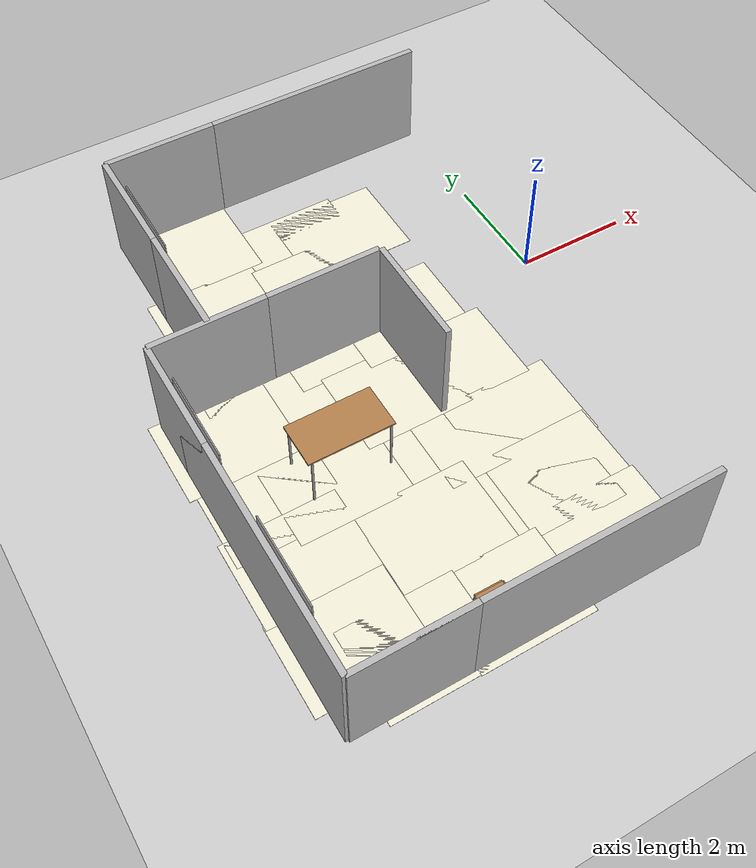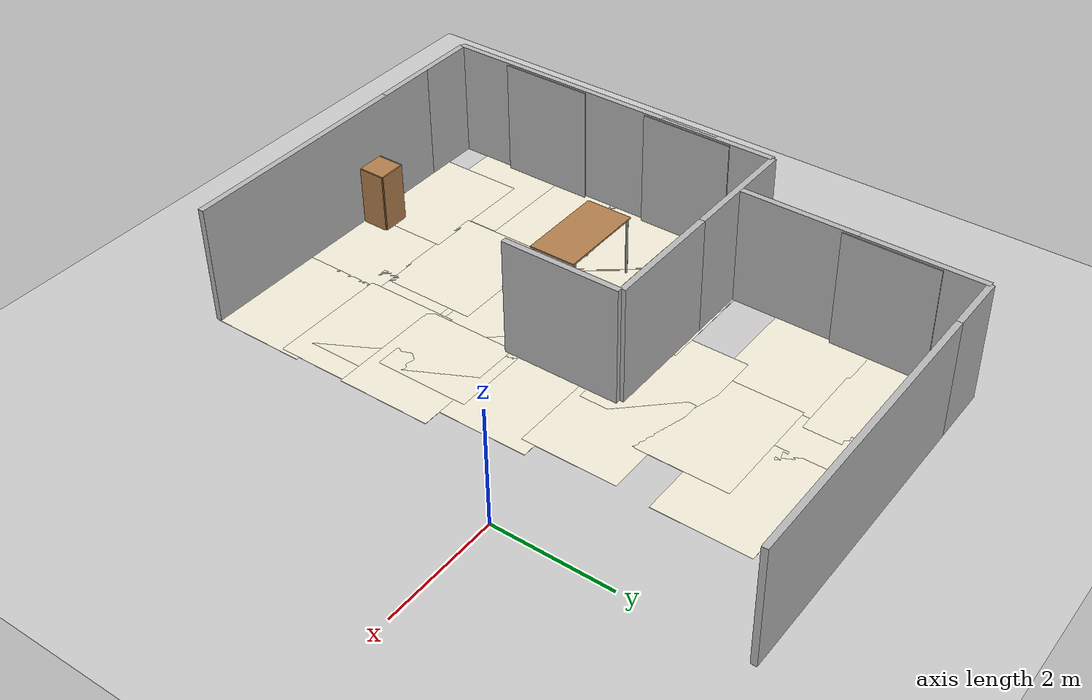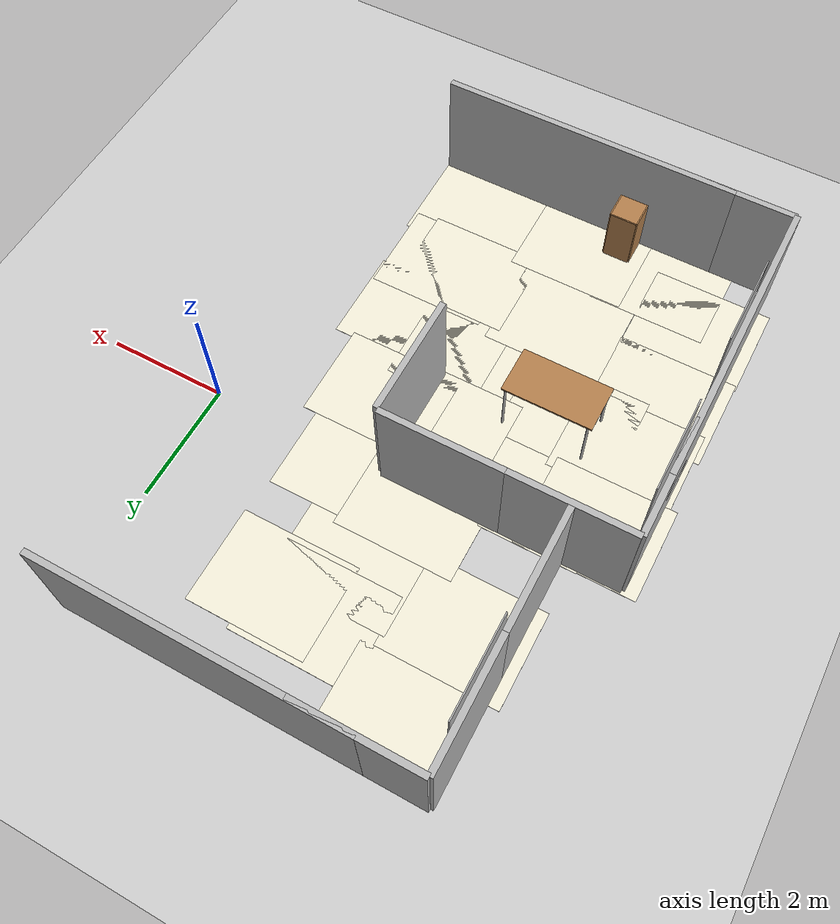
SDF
<sdf version="1.7">
 <world name="default">
  <model name="ground_plane">
   <static>1</static>
   <link name="link">
    <collision name="collision">
     <geometry><plane><normal>0 0 1</normal><size>100 100</size></plane></geometry>
     <surface>
      <contact><collide_bitmask>65535</collide_bitmask></contact>
      <friction><ode><mu>100</mu><mu2>50</mu2></ode></friction>
     </surface>
    </collision>
    <visual name="visual">
     <cast_shadows>0</cast_shadows>
     <geometry><plane><normal>0 0 1</normal><size>1 1</size></plane></geometry>
     <material>
      <script><uri>file://media/materials/scripts/gazebo.material</uri><name>Gazebo/Grey</name></script>
     </material>
    </visual>
   </link>
  </model>
  <model name="cabinet">
   <static>1</static>
   <link name="cabinet_bottom_plate">
    <inertial>
     <pose>0 0 -1 0 -0 0</pose>
     <inertia><ixx>2.05</ixx><ixy>0</ixy><ixz>0</ixz><iyy>2.05</iyy><iyz>0</iyz><izz>2.05</izz></inertia>
     <mass>25</mass>
    </inertial>
    <collision name="cabinet_bottom_plate_geom">
     <pose>0 0 0.01 0 -0 0</pose>
     <geometry><box><size>0.45 0.45 0.02</size></box></geometry>
    </collision>
    <visual name="cabinet_bottom_plate_geom_visual">
     <pose>0 0 0.01 0 -0 0</pose>
     <geometry><box><size>0.45 0.45 0.02</size></box></geometry>
     <material>
      <script><uri>file://media/materials/scripts/gazebo.material</uri><name>Gazebo/Wood</name></script>
     </material>
    </visual>
    <collision name="cabinet_bottom_plate_geom_cabinet_back_plate">
     <pose>0.235 0 0.51 0 -0 0</pose>
     <geometry><box><size>0.02 0.45 1.02</size></box></geometry>
    </collision>
    <visual name="cabinet_bottom_plate_geom_cabinet_back_plate_visual">
     <pose>0.235 0 0.51 0 -0 0</pose>
     <geometry><box><size>0.02 0.45 1.02</size></box></geometry>
     <material>
      <script><uri>file://media/materials/scripts/gazebo.material</uri><name>Gazebo/Wood</name></script>
     </material>
    </visual>
    <collision name="cabinet_bottom_plate_geom_cabinet_left_plate">
     <pose>0 0.235 0.51 0 -0 0</pose>
     <geometry><box><size>0.45 0.02 1.02</size></box></geometry>
    </collision>
    <visual name="cabinet_bottom_plate_geom_cabinet_left_plate_visual">
     <pose>0 0.235 0.51 0 -0 0</pose>
     <geometry><box><size>0.45 0.02 1.02</size></box></geometry>
     <material>
      <script><uri>file://media/materials/scripts/gazebo.material</uri><name>Gazebo/Wood</name></script>
     </material>
    </visual>
    <collision name="cabinet_bottom_plate_geom_cabinet_middle_plate">
     <pose>0 0 0.51 0 -0 0</pose>
     <geometry><box><size>0.45 0.45 0.02</size></box></geometry>
    </collision>
    <visual name="cabinet_bottom_plate_geom_cabinet_middle_plate_visual">
     <pose>0 0 0.51 0 -0 0</pose>
     <geometry><box><size>0.45 0.45 0.02</size></box></geometry>
     <material>
      <script><uri>file://media/materials/scripts/gazebo.material</uri><name>Gazebo/Wood</name></script>
     </material>
    </visual>
    <collision name="cabinet_bottom_plate_geom_cabinet_right_plate">
     <pose>0 -0.235 0.51 0 -0 0</pose>
     <geometry><box><size>0.45 0.02 1.02</size></box></geometry>
    </collision>
    <visual name="cabinet_bottom_plate_geom_cabinet_right_plate_visual">
     <pose>0 -0.235 0.51 0 -0 0</pose>
     <geometry><box><size>0.45 0.02 1.02</size></box></geometry>
     <material>
      <script><uri>file://media/materials/scripts/gazebo.material</uri><name>Gazebo/Wood</name></script>
     </material>
    </visual>
    <collision name="cabinet_bottom_plate_geom_cabinet_top_plate">
     <pose>0 0 1.01 0 -0 0</pose>
     <geometry><box><size>0.45 0.45 0.02</size></box></geometry>
    </collision>
    <visual name="cabinet_bottom_plate_geom_cabinet_top_plate_visual">
     <pose>0 0 1.01 0 -0 0</pose>
     <geometry><box><size>0.45 0.45 0.02</size></box></geometry>
     <material>
      <script><uri>file://media/materials/scripts/gazebo.material</uri><name>Gazebo/Wood</name></script>
     </material>
    </visual>
   </link>
   <pose>-4.47625 -5.715 0 0 -0 1.5707</pose>
  </model>
  <model name="window_curtains">
   <link name="link">
    <visual name="visual">
     <geometry><box><size>0.02 1.5676 2</size></box></geometry>
     <material>
      <script>
       <uri>https://fuel.ignitionrobotics.org/1.0/makerspet/models/window_curtains/1/files/material/script</uri>
       <uri>https://fuel.ignitionrobotics.org/1.0/makerspet/models/window_curtains/1/files/material/textures</uri>
       <name>Custom/window_curtains</name>
      </script>
      <emissive>0 1 0 1</emissive>
     </material>
    </visual>
   </link>
   <static>1</static>
   <pose>-6.9 -1.5 1 0 -0 0</pose>
  </model>
  <model name="rug_ivory_2m_0_clone_2">
   <link name="link">
    <visual name="visual">
     <geometry><box><size>1.6 2 0.005</size></box></geometry>
     <material>
      <script>
       <uri>https://fuel.ignitionrobotics.org/1.0/makerspet/models/rug_ivory_2m/1/files/material/script</uri>
       <uri>https://fuel.ignitionrobotics.org/1.0/makerspet/models/rug_ivory_2m/1/files/material/textures</uri>
       <name>Custom/rug_ivory_2m</name>
      </script>
     </material>
    </visual>
   </link>
   <static>1</static>
   <pose>-2.54549 0.135831 0 0 -0 1.5707</pose>
  </model>
  <model name="rug_ivory_2m_0_clone_3">
   <link name="link">
    <visual name="visual">
     <geometry><box><size>1.6 2 0.005</size></box></geometry>
     <material>
      <script>
       <uri>https://fuel.ignitionrobotics.org/1.0/makerspet/models/rug_ivory_2m/1/files/material/script</uri>
       <uri>https://fuel.ignitionrobotics.org/1.0/makerspet/models/rug_ivory_2m/1/files/material/textures</uri>
       <name>Custom/rug_ivory_2m</name>
      </script>
     </material>
    </visual>
   </link>
   <static>1</static>
   <pose>-2.31207 -1.22899 0 0 -0 1.5707</pose>
  </model>
  <model name="rug_ivory_2m_0_clone_4">
   <link name="link">
    <visual name="visual">
     <geometry><box><size>1.6 2 0.005</size></box></geometry>
     <material>
      <script>
       <uri>https://fuel.ignitionrobotics.org/1.0/makerspet/models/rug_ivory_2m/1/files/material/script</uri>
       <uri>https://fuel.ignitionrobotics.org/1.0/makerspet/models/rug_ivory_2m/1/files/material/textures</uri>
       <name>Custom/rug_ivory_2m</name>
      </script>
     </material>
    </visual>
   </link>
   <static>1</static>
   <pose>-3.74861 0.261543 0 0 -0 1.5707</pose>
  </model>
  <model name="rug_ivory_2m_0_clone_5">
   <link name="link">
    <visual name="visual">
     <geometry><box><size>1.6 2 0.005</size></box></geometry>
     <material>
      <script>
       <uri>https://fuel.ignitionrobotics.org/1.0/makerspet/models/rug_ivory_2m/1/files/material/script</uri>
       <uri>https://fuel.ignitionrobotics.org/1.0/makerspet/models/rug_ivory_2m/1/files/material/textures</uri>
       <name>Custom/rug_ivory_2m</name>
      </script>
     </material>
    </visual>
   </link>
   <static>1</static>
   <pose>-3.38948 -1.26477 0 0 -0 1.5707</pose>
  </model>
  <model name="rug_ivory_2m_0_clone_9">
   <link name="link">
    <visual name="visual">
     <geometry><box><size>1.6 2 0.005</size></box></geometry>
     <material>
      <script>
       <uri>https://fuel.ignitionrobotics.org/1.0/makerspet/models/rug_ivory_2m/1/files/material/script</uri>
       <uri>https://fuel.ignitionrobotics.org/1.0/makerspet/models/rug_ivory_2m/1/files/material/textures</uri>
       <name>Custom/rug_ivory_2m</name>
      </script>
     </material>
    </visual>
   </link>
   <static>1</static>
   <pose>-2.63708 -2.55998 0 0 -0 1.5707</pose>
  </model>
  <model name="rug_ivory_2m_0_clone_10">
   <link name="link">
    <visual name="visual">
     <geometry><box><size>1.6 2 0.005</size></box></geometry>
     <material>
      <script>
       <uri>https://fuel.ignitionrobotics.org/1.0/makerspet/models/rug_ivory_2m/1/files/material/script</uri>
       <uri>https://fuel.ignitionrobotics.org/1.0/makerspet/models/rug_ivory_2m/1/files/material/textures</uri>
       <name>Custom/rug_ivory_2m</name>
      </script>
     </material>
    </visual>
   </link>
   <static>1</static>
   <pose>-3.15323 -2.45459 0 0 -0 1.5707</pose>
  </model>
  <model name="rug_ivory_2m_0_clone_11">
   <link name="link">
    <visual name="visual">
     <geometry><box><size>1.6 2 0.005</size></box></geometry>
     <material>
      <script>
       <uri>https://fuel.ignitionrobotics.org/1.0/makerspet/models/rug_ivory_2m/1/files/material/script</uri>
       <uri>https://fuel.ignitionrobotics.org/1.0/makerspet/models/rug_ivory_2m/1/files/material/textures</uri>
       <name>Custom/rug_ivory_2m</name>
      </script>
     </material>
    </visual>
   </link>
   <static>1</static>
   <pose>-2.01118 -2.74192 0 0 -0 1.5707</pose>
  </model>
  <model name="rug_ivory_2m_0_clone_12">
   <link name="link">
    <visual name="visual">
     <geometry><box><size>1.6 2 0.005</size></box></geometry>
     <material>
      <script>
       <uri>https://fuel.ignitionrobotics.org/1.0/makerspet/models/rug_ivory_2m/1/files/material/script</uri>
       <uri>https://fuel.ignitionrobotics.org/1.0/makerspet/models/rug_ivory_2m/1/files/material/textures</uri>
       <name>Custom/rug_ivory_2m</name>
      </script>
     </material>
    </visual>
   </link>
   <static>1</static>
   <pose>-2.04372 -3.92836 0 0 -0 1.5707</pose>
  </model>
  <model name="rug_ivory_2m_0_clone_16">
   <link name="link">
    <visual name="visual">
     <geometry><box><size>1.6 2 0.005</size></box></geometry>
     <material>
      <script>
       <uri>https://fuel.ignitionrobotics.org/1.0/makerspet/models/rug_ivory_2m/1/files/material/script</uri>
       <uri>https://fuel.ignitionrobotics.org/1.0/makerspet/models/rug_ivory_2m/1/files/material/textures</uri>
       <name>Custom/rug_ivory_2m</name>
      </script>
     </material>
    </visual>
   </link>
   <static>1</static>
   <pose>-2.40318 -3.98966 0 0 -0 1.5707</pose>
  </model>
  <model name="rug_ivory_2m_0_clone_20">
   <link name="link">
    <visual name="visual">
     <geometry><box><size>1.6 2 0.005</size></box></geometry>
     <material>
      <script>
       <uri>https://fuel.ignitionrobotics.org/1.0/makerspet/models/rug_ivory_2m/1/files/material/script</uri>
       <uri>https://fuel.ignitionrobotics.org/1.0/makerspet/models/rug_ivory_2m/1/files/material/textures</uri>
       <name>Custom/rug_ivory_2m</name>
      </script>
     </material>
    </visual>
   </link>
   <static>1</static>
   <pose>-2.47501 2.31322 0 0 -0 1.5707</pose>
  </model>
  <model name="rug_ivory_2m_0_clone_21">
   <link name="link">
    <visual name="visual">
     <geometry><box><size>1.6 2 0.005</size></box></geometry>
     <material>
      <script>
       <uri>https://fuel.ignitionrobotics.org/1.0/makerspet/models/rug_ivory_2m/1/files/material/script</uri>
       <uri>https://fuel.ignitionrobotics.org/1.0/makerspet/models/rug_ivory_2m/1/files/material/textures</uri>
       <name>Custom/rug_ivory_2m</name>
      </script>
     </material>
    </visual>
   </link>
   <static>1</static>
   <pose>-3.24717 2.40315 0 0 -0 1.5707</pose>
  </model>
  <model name="rug_ivory_2m_0_clone_22">
   <link name="link">
    <visual name="visual">
     <geometry><box><size>1.6 2 0.005</size></box></geometry>
     <material>
      <script>
       <uri>https://fuel.ignitionrobotics.org/1.0/makerspet/models/rug_ivory_2m/1/files/material/script</uri>
       <uri>https://fuel.ignitionrobotics.org/1.0/makerspet/models/rug_ivory_2m/1/files/material/textures</uri>
       <name>Custom/rug_ivory_2m</name>
      </script>
     </material>
    </visual>
   </link>
   <static>1</static>
   <pose>-5.02489 3.17481 0 0 -0 1.5707</pose>
  </model>
  <model name="rug_ivory_2m_0_clone_23">
   <link name="link">
    <visual name="visual">
     <geometry><box><size>1.6 2 0.005</size></box></geometry>
     <material>
      <script>
       <uri>https://fuel.ignitionrobotics.org/1.0/makerspet/models/rug_ivory_2m/1/files/material/script</uri>
       <uri>https://fuel.ignitionrobotics.org/1.0/makerspet/models/rug_ivory_2m/1/files/material/textures</uri>
       <name>Custom/rug_ivory_2m</name>
      </script>
     </material>
    </visual>
   </link>
   <static>1</static>
   <pose>-6.13652 -2.12824 0 0 -0 1.5707</pose>
  </model>
  <model name="rug_ivory_2m_0_clone_24">
   <link name="link">
    <visual name="visual">
     <geometry><box><size>1.6 2 0.005</size></box></geometry>
     <material>
      <script>
       <uri>https://fuel.ignitionrobotics.org/1.0/makerspet/models/rug_ivory_2m/1/files/material/script</uri>
       <uri>https://fuel.ignitionrobotics.org/1.0/makerspet/models/rug_ivory_2m/1/files/material/textures</uri>
       <name>Custom/rug_ivory_2m</name>
      </script>
     </material>
    </visual>
   </link>
   <static>1</static>
   <pose>-5.30609 -0.715752 0 0 -0 1.5707</pose>
  </model>
  <model name="rug_ivory_2m_0_clone_25">
   <link name="link">
    <visual name="visual">
     <geometry><box><size>1.6 2 0.005</size></box></geometry>
     <material>
      <script>
       <uri>https://fuel.ignitionrobotics.org/1.0/makerspet/models/rug_ivory_2m/1/files/material/script</uri>
       <uri>https://fuel.ignitionrobotics.org/1.0/makerspet/models/rug_ivory_2m/1/files/material/textures</uri>
       <name>Custom/rug_ivory_2m</name>
      </script>
     </material>
    </visual>
   </link>
   <static>1</static>
   <pose>-5.1388 -2.26415 0 0 -0 1.5707</pose>
  </model>
  <model name="rug_ivory_2m_0_clone_26">
   <link name="link">
    <visual name="visual">
     <geometry><box><size>1.6 2 0.005</size></box></geometry>
     <material>
      <script>
       <uri>https://fuel.ignitionrobotics.org/1.0/makerspet/models/rug_ivory_2m/1/files/material/script</uri>
       <uri>https://fuel.ignitionrobotics.org/1.0/makerspet/models/rug_ivory_2m/1/files/material/textures</uri>
       <name>Custom/rug_ivory_2m</name>
      </script>
     </material>
    </visual>
   </link>
   <static>1</static>
   <pose>-5.22689 1.62172 0 0 -0 1.5707</pose>
  </model>
  <model name="rug_ivory_2m_0_clone_27">
   <link name="link">
    <visual name="visual">
     <geometry><box><size>1.6 2 0.005</size></box></geometry>
     <material>
      <script>
       <uri>https://fuel.ignitionrobotics.org/1.0/makerspet/models/rug_ivory_2m/1/files/material/script</uri>
       <uri>https://fuel.ignitionrobotics.org/1.0/makerspet/models/rug_ivory_2m/1/files/material/textures</uri>
       <name>Custom/rug_ivory_2m</name>
      </script>
     </material>
    </visual>
   </link>
   <static>1</static>
   <pose>-6.25303 -0.728634 0 0 -0 1.5707</pose>
  </model>
  <model name="window_curtains_0_clone">
   <link name="link">
    <visual name="visual">
     <geometry><box><size>0.02 1.5676 2</size></box></geometry>
     <material>
      <script>
       <uri>https://fuel.ignitionrobotics.org/1.0/makerspet/models/window_curtains/1/files/material/script</uri>
       <uri>https://fuel.ignitionrobotics.org/1.0/makerspet/models/window_curtains/1/files/material/textures</uri>
       <name>Custom/window_curtains</name>
      </script>
      <emissive>0 1 0 1</emissive>
     </material>
    </visual>
   </link>
   <static>1</static>
   <pose>-5.9 2.54676 1 0 -0 0</pose>
  </model>
  <model name="window_curtains_0_clone_2">
   <link name="link">
    <visual name="visual">
     <geometry><box><size>0.02 1.5676 2</size></box></geometry>
     <material>
      <script>
       <uri>https://fuel.ignitionrobotics.org/1.0/makerspet/models/window_curtains/1/files/material/script</uri>
       <uri>https://fuel.ignitionrobotics.org/1.0/makerspet/models/window_curtains/1/files/material/textures</uri>
       <name>Custom/window_curtains</name>
      </script>
      <emissive>0 1 0 1</emissive>
     </material>
    </visual>
   </link>
   <static>1</static>
   <pose>-6.9 -4.2053 1 0 -0 0</pose>
  </model>
  <model name="rug_ivory_2m_0_clone_8_clone_3">
   <link name="link">
    <visual name="visual">
     <geometry><box><size>1.6 2 0.005</size></box></geometry>
     <material>
      <script>
       <uri>https://fuel.ignitionrobotics.org/1.0/makerspet/models/rug_ivory_2m/1/files/material/script</uri>
       <uri>https://fuel.ignitionrobotics.org/1.0/makerspet/models/rug_ivory_2m/1/files/material/textures</uri>
       <name>Custom/rug_ivory_2m</name>
      </script>
     </material>
    </visual>
   </link>
   <static>1</static>
   <pose>-3.30448 1.44929 0 0 -0 1.5707</pose>
  </model>
  <model name="room_wall_2x5_1_clone_clone_clone">
   <link name="link">
    <visual name="visual">
     <geometry><box><size>0.1 5 2</size></box></geometry>
     <material>
      <script>
       <uri>https://fuel.ignitionrobotics.org/1.0/makerspet/models/room_wall_2x5m/1/files/material/script</uri>
       <uri>https://fuel.ignitionrobotics.org/1.0/makerspet/models/room_wall_2x5m/1/files/material/textures</uri>
       <name>Custom/room_wall_2x5</name>
      </script>
     </material>
    </visual>
    <collision name="collision"><geometry><box><size>0.1 5 2</size></box></geometry></collision>
   </link>
   <static>1</static>
   <pose>-3.5 -6 1 0 -0 1.5707</pose>
  </model>
  <model name="room_wall_2x2_clone_0_clone_clone_clone_0">
   <link name="link">
    <visual name="visual">
     <geometry><box><size>0.1 2 2</size></box></geometry>
     <material>
      <script>
       <uri>https://fuel.ignitionrobotics.org/1.0/makerspet/models/room_wall_2x5m/1/files/material/script</uri>
       <uri>https://fuel.ignitionrobotics.org/1.0/makerspet/models/room_wall_2x5m/1/files/material/textures</uri>
       <name>Custom/room_wall_2x5</name>
      </script>
     </material>
    </visual>
    <collision name="collision"><geometry><box><size>0.1 2 2</size></box></geometry></collision>
   </link>
   <static>1</static>
   <pose>-6 1 1 0 -0 0</pose>
  </model>
  <model name="room_wall_2x5_1_clone_clone_clone_clone_clone">
   <link name="link">
    <visual name="visual">
     <geometry><box><size>0.1 5 2</size></box></geometry>
     <material>
      <script>
       <uri>https://fuel.ignitionrobotics.org/1.0/makerspet/models/room_wall_2x5m/1/files/material/script</uri>
       <uri>https://fuel.ignitionrobotics.org/1.0/makerspet/models/room_wall_2x5m/1/files/material/textures</uri>
       <name>Custom/room_wall_2x5</name>
      </script>
     </material>
    </visual>
    <collision name="collision"><geometry><box><size>0.1 5 2</size></box></geometry></collision>
   </link>
   <static>1</static>
   <pose>-7 -3.51831 1 0 -0 0</pose>
  </model>
  <model name="room_wall_2x2_clone_0_clone_clone_clone_0_clone">
   <link name="link">
    <visual name="visual">
     <geometry><box><size>0.1 2 2</size></box></geometry>
     <material>
      <script>
       <uri>https://fuel.ignitionrobotics.org/1.0/makerspet/models/room_wall_2x5m/1/files/material/script</uri>
       <uri>https://fuel.ignitionrobotics.org/1.0/makerspet/models/room_wall_2x5m/1/files/material/textures</uri>
       <name>Custom/room_wall_2x5</name>
      </script>
     </material>
    </visual>
    <collision name="collision"><geometry><box><size>0.1 2 2</size></box></geometry></collision>
   </link>
   <static>1</static>
   <pose>-6 0 1 0 -0 1.5707</pose>
  </model>
  <model name="room_wall_2x2_clone_0_clone_clone_clone_0_clone_clone">
   <link name="link">
    <visual name="visual">
     <geometry><box><size>0.1 2 2</size></box></geometry>
     <material>
      <script>
       <uri>https://fuel.ignitionrobotics.org/1.0/makerspet/models/room_wall_2x5m/1/files/material/script</uri>
       <uri>https://fuel.ignitionrobotics.org/1.0/makerspet/models/room_wall_2x5m/1/files/material/textures</uri>
       <name>Custom/room_wall_2x5</name>
      </script>
     </material>
    </visual>
    <collision name="collision"><geometry><box><size>0.1 2 2</size></box></geometry></collision>
   </link>
   <static>1</static>
   <pose>-4 0 1 0 -0 1.5707</pose>
  </model>
  <model name="room_wall_2x2_clone_0_clone_clone_clone_0_clone_0">
   <link name="link">
    <visual name="visual">
     <geometry><box><size>0.1 2 2</size></box></geometry>
     <material>
      <script>
       <uri>https://fuel.ignitionrobotics.org/1.0/makerspet/models/room_wall_2x5m/1/files/material/script</uri>
       <uri>https://fuel.ignitionrobotics.org/1.0/makerspet/models/room_wall_2x5m/1/files/material/textures</uri>
       <name>Custom/room_wall_2x5</name>
      </script>
     </material>
    </visual>
    <collision name="collision"><geometry><box><size>0.1 2 2</size></box></geometry></collision>
   </link>
   <static>1</static>
   <pose>-6 3 1 0 -0 0</pose>
  </model>
  <model name="room_wall_2x2_clone_0_clone_clone_clone_0_clone_1">
   <link name="link">
    <visual name="visual">
     <geometry><box><size>0.1 2 2</size></box></geometry>
     <material>
      <script>
       <uri>https://fuel.ignitionrobotics.org/1.0/makerspet/models/room_wall_2x5m/1/files/material/script</uri>
       <uri>https://fuel.ignitionrobotics.org/1.0/makerspet/models/room_wall_2x5m/1/files/material/textures</uri>
       <name>Custom/room_wall_2x5</name>
      </script>
     </material>
    </visual>
    <collision name="collision"><geometry><box><size>0.1 2 2</size></box></geometry></collision>
   </link>
   <static>1</static>
   <pose>-7 -1 1 0 -0 0</pose>
  </model>
  <model name="room_wall_2x2_clone_0_clone_clone_clone_0_clone_clone_0_clone">
   <link name="link">
    <visual name="visual">
     <geometry><box><size>0.1 2 2</size></box></geometry>
     <material>
      <script>
       <uri>https://fuel.ignitionrobotics.org/1.0/makerspet/models/room_wall_2x5m/1/files/material/script</uri>
       <uri>https://fuel.ignitionrobotics.org/1.0/makerspet/models/room_wall_2x5m/1/files/material/textures</uri>
       <name>Custom/room_wall_2x5</name>
      </script>
     </material>
    </visual>
    <collision name="collision"><geometry><box><size>0.1 2 2</size></box></geometry></collision>
   </link>
   <static>1</static>
   <pose>-6 -6 1 0 -0 1.5707</pose>
  </model>
  <model name="room_wall_2x5_1_clone_clone_clone_clone_0">
   <link name="link">
    <visual name="visual">
     <geometry><box><size>0.1 5 2</size></box></geometry>
     <material>
      <script>
       <uri>https://fuel.ignitionrobotics.org/1.0/makerspet/models/room_wall_2x5m/1/files/material/script</uri>
       <uri>https://fuel.ignitionrobotics.org/1.0/makerspet/models/room_wall_2x5m/1/files/material/textures</uri>
       <name>Custom/room_wall_2x5</name>
      </script>
     </material>
    </visual>
    <collision name="collision"><geometry><box><size>0.1 5 2</size></box></geometry></collision>
   </link>
   <static>1</static>
   <pose>-2.5 4 1 0 -0 1.5707</pose>
  </model>
  <model name="room_wall_2x2_clone_0_clone_clone_clone_0_clone_clone_clone">
   <link name="link">
    <visual name="visual">
     <geometry><box><size>0.1 2 2</size></box></geometry>
     <material>
      <script>
       <uri>https://fuel.ignitionrobotics.org/1.0/makerspet/models/room_wall_2x5m/1/files/material/script</uri>
       <uri>https://fuel.ignitionrobotics.org/1.0/makerspet/models/room_wall_2x5m/1/files/material/textures</uri>
       <name>Custom/room_wall_2x5</name>
      </script>
     </material>
    </visual>
    <collision name="collision"><geometry><box><size>0.1 2 2</size></box></geometry></collision>
   </link>
   <static>1</static>
   <pose>-5 4 1 0 -0 1.5707</pose>
  </model>
  <model name="room_wall_2x2_clone_0_clone_clone_clone_0_clone_2_clone">
   <link name="link">
    <visual name="visual">
     <geometry><box><size>0.1 2 2</size></box></geometry>
     <material>
      <script>
       <uri>https://fuel.ignitionrobotics.org/1.0/makerspet/models/room_wall_2x5m/1/files/material/script</uri>
       <uri>https://fuel.ignitionrobotics.org/1.0/makerspet/models/room_wall_2x5m/1/files/material/textures</uri>
       <name>Custom/room_wall_2x5</name>
      </script>
     </material>
    </visual>
    <collision name="collision"><geometry><box><size>0.1 2 2</size></box></geometry></collision>
   </link>
   <static>1</static>
   <pose>-2.97044 -1.01817 1 0 -0 0</pose>
  </model>
  <model name="Table">
   <static>1</static>
   <link name="link">
    <collision name="surface">
     <pose>0 0 1 0 -0 0</pose>
     <geometry><box><size>1.5 0.8 0.03</size></box></geometry>
     <surface><friction><ode><mu>0.6</mu><mu2>0.6</mu2></ode></friction></surface>
    </collision>
    <visual name="visual1">
     <pose>0 0 1 0 -0 0</pose>
     <geometry><box><size>1.5 0.8 0.03</size></box></geometry>
     <material>
      <diffuse>1 1 1 1</diffuse>
      <script><uri>file://media/materials/scripts/gazebo.material</uri><name>Gazebo/Wood</name></script>
      <pbr>
       <metal>
        <albedo_map>https://fuel.gazebosim.org/1.0/openrobotics/models/table/4/files/Table_Diffuse.jpg</albedo_map>
       </metal>
      </pbr>
     </material>
    </visual>
    <collision name="front_left_leg">
     <pose>0.68 0.38 0.5 0 -0 0</pose>
     <geometry><cylinder><radius>0.02</radius><length>1</length></cylinder></geometry>
    </collision>
    <visual name="front_left_leg">
     <pose>0.68 0.38 0.5 0 -0 0</pose>
     <geometry><cylinder><radius>0.02</radius><length>1</length></cylinder></geometry>
     <material>
      <diffuse>0.5 0.5 0.5 1</diffuse>
      <script><uri>file://media/materials/scripts/gazebo.material</uri><name>Gazebo/Grey</name></script>
     </material>
    </visual>
    <collision name="front_right_leg">
     <pose>0.68 -0.38 0.5 0 -0 0</pose>
     <geometry><cylinder><radius>0.02</radius><length>1</length></cylinder></geometry>
    </collision>
    <visual name="front_right_leg">
     <pose>0.68 -0.38 0.5 0 -0 0</pose>
     <geometry><cylinder><radius>0.02</radius><length>1</length></cylinder></geometry>
     <material>
      <diffuse>0.5 0.5 0.5 1</diffuse>
      <script><uri>file://media/materials/scripts/gazebo.material</uri><name>Gazebo/Grey</name></script>
     </material>
    </visual>
    <collision name="back_right_leg">
     <pose>-0.68 -0.38 0.5 0 -0 0</pose>
     <geometry><cylinder><radius>0.02</radius><length>1</length></cylinder></geometry>
    </collision>
    <visual name="back_right_leg">
     <pose>-0.68 -0.38 0.5 0 -0 0</pose>
     <geometry><cylinder><radius>0.02</radius><length>1</length></cylinder></geometry>
     <material>
      <diffuse>0.5 0.5 0.5 1</diffuse>
      <script><uri>file://media/materials/scripts/gazebo.material</uri><name>Gazebo/Grey</name></script>
     </material>
    </visual>
    <collision name="back_left_leg">
     <pose>-0.68 0.38 0.5 0 -0 0</pose>
     <geometry><cylinder><radius>0.02</radius><length>1</length></cylinder></geometry>
    </collision>
    <visual name="back_left_leg">
     <pose>-0.68 0.38 0.5 0 -0 0</pose>
     <geometry><cylinder><radius>0.02</radius><length>1</length></cylinder></geometry>
     <material>
      <diffuse>0.5 0.5 0.5 1</diffuse>
      <script><uri>file://media/materials/scripts/gazebo.material</uri><name>Gazebo/Grey</name></script>
     </material>
    </visual>
   </link>
   <pose>-4.8962 -2.05605 0 0 -0 0</pose>
  </model>
  <model name="rug_ivory_2m_0_clone_12_clone">
   <link name="link">
    <visual name="visual">
     <geometry><box><size>1.6 2 0.005</size></box></geometry>
     <material>
      <script>
       <uri>https://fuel.ignitionrobotics.org/1.0/makerspet/models/rug_ivory_2m/1/files/material/script</uri>
       <uri>https://fuel.ignitionrobotics.org/1.0/makerspet/models/rug_ivory_2m/1/files/material/textures</uri>
       <name>Custom/rug_ivory_2m</name>
      </script>
     </material>
    </visual>
   </link>
   <static>1</static>
   <pose>-1.98886 -5.19282 0 0 -0 1.5707</pose>
  </model>
  <model name="rug_ivory_2m_0_clone_12_clone_0">
   <link name="link">
    <visual name="visual">
     <geometry><box><size>1.6 2 0.005</size></box></geometry>
     <material>
      <script>
       <uri>https://fuel.ignitionrobotics.org/1.0/makerspet/models/rug_ivory_2m/1/files/material/script</uri>
       <uri>https://fuel.ignitionrobotics.org/1.0/makerspet/models/rug_ivory_2m/1/files/material/textures</uri>
       <name>Custom/rug_ivory_2m</name>
      </script>
     </material>
    </visual>
   </link>
   <static>1</static>
   <pose>-3.94694 -5.35464 0 0 -0 1.5707</pose>
  </model>
  <model name="rug_ivory_2m_0_clone_12_clone_1">
   <link name="link">
    <visual name="visual">
     <geometry><box><size>1.6 2 0.005</size></box></geometry>
     <material>
      <script>
       <uri>https://fuel.ignitionrobotics.org/1.0/makerspet/models/rug_ivory_2m/1/files/material/script</uri>
       <uri>https://fuel.ignitionrobotics.org/1.0/makerspet/models/rug_ivory_2m/1/files/material/textures</uri>
       <name>Custom/rug_ivory_2m</name>
      </script>
     </material>
    </visual>
   </link>
   <static>1</static>
   <pose>-4.23825 -3.78492 0 0 -0 1.5707</pose>
  </model>
  <model name="rug_ivory_2m_0_clone_12_clone_2">
   <link name="link">
    <visual name="visual">
     <geometry><box><size>1.6 2 0.005</size></box></geometry>
     <material>
      <script>
       <uri>https://fuel.ignitionrobotics.org/1.0/makerspet/models/rug_ivory_2m/1/files/material/script</uri>
       <uri>https://fuel.ignitionrobotics.org/1.0/makerspet/models/rug_ivory_2m/1/files/material/textures</uri>
       <name>Custom/rug_ivory_2m</name>
      </script>
     </material>
    </visual>
   </link>
   <static>1</static>
   <pose>-5.41957 -5.33846 0 0 -0 1.5707</pose>
  </model>
  <model name="rug_ivory_2m_0_clone_12_clone_3">
   <link name="link">
    <visual name="visual">
     <geometry><box><size>1.6 2 0.005</size></box></geometry>
     <material>
      <script>
       <uri>https://fuel.ignitionrobotics.org/1.0/makerspet/models/rug_ivory_2m/1/files/material/script</uri>
       <uri>https://fuel.ignitionrobotics.org/1.0/makerspet/models/rug_ivory_2m/1/files/material/textures</uri>
       <name>Custom/rug_ivory_2m</name>
      </script>
     </material>
    </visual>
   </link>
   <static>1</static>
   <pose>-6.22866 -3.23473 0 0 -0 1.5707</pose>
  </model>
  <model name="rug_ivory_2m_0_clone_12_clone_4">
   <link name="link">
    <visual name="visual">
     <geometry><box><size>1.6 2 0.005</size></box></geometry>
     <material>
      <script>
       <uri>https://fuel.ignitionrobotics.org/1.0/makerspet/models/rug_ivory_2m/1/files/material/script</uri>
       <uri>https://fuel.ignitionrobotics.org/1.0/makerspet/models/rug_ivory_2m/1/files/material/textures</uri>
       <name>Custom/rug_ivory_2m</name>
      </script>
     </material>
    </visual>
   </link>
   <static>1</static>
   <pose>-6.24748 -4.7397 0 0 -0 1.5707</pose>
  </model>
 </world>
</sdf>
